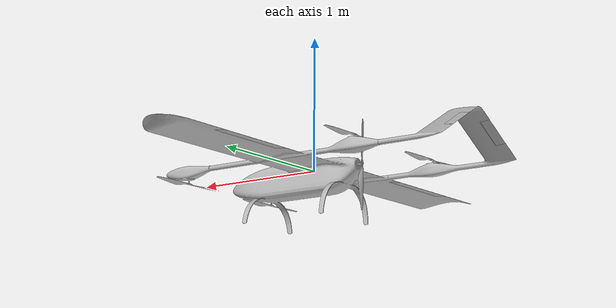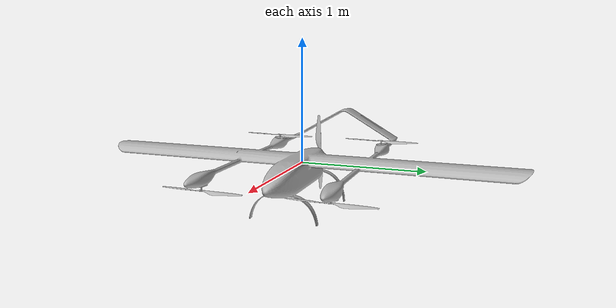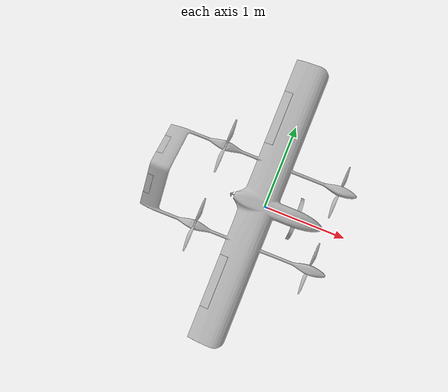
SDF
<?xml version="1.0"?>
<sdf version='1.6'>
  <model name='v1_vtol'>
    <link name='base_link'>
      <pose frame=''>0 0 0 0 -0 0</pose>
      <inertial>
        <pose frame=''>0 0 0 0 -0.073 0</pose>
        <mass>1.00568</mass>
        <inertia>
          <ixx>0.323867</ixx>
          <ixy>7.81346e-06</ixy>
          <ixz>0.012841</ixz>
          <iyy>0.240986</iyy>
          <iyz>-1.50384e-06</iyz>
          <izz>0.516377</izz>
        </inertia>
      </inertial>
      <collision name='base_link_collision'>
        <pose frame=''>0 0 0 0 -0 0</pose>
        <geometry>
          <mesh>
            <scale>1 1 1</scale>
            <uri>model://v1_vtol/new_meshes/base_link.stl</uri>
          </mesh>
        </geometry>
      </collision>
      <visual name='base_link_visual'>
        <pose frame=''>0 0 0 0 -0 0</pose>
        <geometry>
          <mesh>
            <scale>1 1 1</scale>
            <uri>model://v1_vtol/new_meshes/base_link.stl</uri>
          </mesh>
        </geometry>
      </visual>
    </link>
    <link name='v1_11/imu_link'>
      <inertial>
        <pose>0 0 0 0 0 0</pose>
        <mass>0.15</mass>
        <inertia>
          <ixx>0.00001</ixx>
          <ixy>0</ixy>
          <ixz>0</ixz>
          <iyy>0.00002</iyy>
          <iyz>0</iyz>
          <izz>0.00002</izz>
        </inertia>
      </inertial>
      <sensor name="imu_sensor" type="imu">
        <pose>0 0 0 3.141593 0 0</pose>
        <always_on>1</always_on>
        <update_rate>1000.0</update_rate>
      </sensor>
    </link>
    <joint name='v1_11/imu_joint' type='revolute'>
      <child>v1_11/imu_link</child>
      <parent>base_link</parent>
      <axis>
        <xyz>0 0 1</xyz>
        <limit>
          <lower>0</lower>
          <upper>0</upper>
          <effort>0</effort>
          <velocity>0</velocity>
        </limit>
        <dynamics>
          <damping>1.0</damping>
        </dynamics>
        <use_parent_model_frame>1</use_parent_model_frame>
      </axis>
      <physics>
        <ode>
          <implicit_spring_damper>1</implicit_spring_damper>
        </ode>
      </physics>
    </joint>
    <link name='left_aileron'>
      <pose frame=''>-0.184816 1.03035 0.028987 0 -0 0</pose>
      <inertial>
        <pose frame=''>-0.05 0 0 0 0 0</pose>
        <mass>0.020384</mass>
        <inertia>
          <ixx>0.000692</ixx>
          <ixy>0</ixy>
          <ixz>-0.000003</ixz>
          <iyy>0.000014</iyy>
          <iyz>0</iyz>
          <izz>0.000704</izz>
        </inertia>
      </inertial>
      <collision name='left_aileron_collision'>
        <pose frame=''>0 0 0 0 -0 0</pose>
        <geometry>
          <mesh>
            <scale>1 1 1</scale>
            <uri>model://v1_vtol/new_meshes/left_aileron.stl</uri>
          </mesh>
        </geometry>
      </collision>
      <visual name='left_aileron_visual'>
        <pose frame=''>0 0 0 0 -0 0</pose>
        <geometry>
          <mesh>
            <scale>1 1 1</scale>
            <uri>model://v1_vtol/new_meshes/left_aileron.stl</uri>
          </mesh>
        </geometry>
      </visual>
    </link>
    <joint name='left_aileron_joint' type='revolute'>
      <child>left_aileron</child>
      <parent>base_link</parent>
      <axis>
        <xyz>0 1 0</xyz>
        <limit>
          <lower>-0.53</lower>
          <upper>0.53</upper>
          <effort>-1</effort>
          <velocity>-1</velocity>
        </limit>
        <dynamics>
          <spring_reference>0</spring_reference>
          <spring_stiffness>0</spring_stiffness>
          <damping>0.004</damping>
        </dynamics>
        <use_parent_model_frame>1</use_parent_model_frame>
      </axis>
      <physics>
          <ode>
            <implicit_spring_damper>1</implicit_spring_damper>
          </ode>
      </physics>
    </joint>
    <link name='left_ruddervator'>
      <pose frame=''>-1.30595 0.239203 0.156078 -2.09515 0.007067 0.000243</pose>
      <inertial>
        <pose frame=''>-0.033 0 0 1.57 0 0</pose>
        <mass>0.0525</mass>
        <inertia>
          <ixx>0.0002673</ixx>
          <ixy>0</ixy>
          <ixz>0</ixz>
          <iyy>0.0000181</iyy>
          <iyz>0</iyz>
          <izz>0.0002845</izz>
        </inertia>
      </inertial>
      <collision name='left_ruddervator_collision'>
        <pose frame=''>0 0 0 0 -0 0</pose>
        <geometry>
          <mesh>
            <scale>1 1 1</scale>
            <uri>model://v1_vtol/new_meshes/left_ruddervator.stl</uri>
          </mesh>
        </geometry>
      </collision>
      <visual name='left_ruddervator_visual'>
        <pose frame=''>0 0 0 0 -0 0</pose>
        <geometry>
          <mesh>
            <scale>1 1 1</scale>
            <uri>model://v1_vtol/new_meshes/left_ruddervator.stl</uri>
          </mesh>
        </geometry>
      </visual>
    </link>
    <joint name='left_ruddervator_joint' type='revolute'>
      <child>left_ruddervator</child>
      <parent>base_link</parent>
      <axis>
        <xyz>0 1 -0.58</xyz>
        <limit>
          <lower>-0.53</lower>
          <upper>0.53</upper>
          <effort>-1</effort>
          <velocity>-1</velocity>
        </limit>
        <dynamics>
          <spring_reference>0</spring_reference>
          <spring_stiffness>0</spring_stiffness>
          <damping>0.004</damping>
        </dynamics>
        <use_parent_model_frame>1</use_parent_model_frame>
      </axis>
      <physics>
          <ode>
            <implicit_spring_damper>1</implicit_spring_damper>
          </ode>
      </physics>
    </joint>
    <link name='right_aileron'>
      <pose frame=''>-0.184816 -1.03035 0.028987 0 -0 0</pose>
      <inertial>
        <pose frame=''>-0.05 0 0 0 0 0</pose>
        <mass>0.020384</mass>
        <inertia>
          <ixx>0.000692</ixx>
          <ixy>0</ixy>
          <ixz>-0.000003</ixz>
          <iyy>0.000014</iyy>
          <iyz>0</iyz>
          <izz>0.000704</izz>
        </inertia>
      </inertial>
      <collision name='right_aileron_collision'>
        <pose frame=''>0 0 0 0 -0 0</pose>
        <geometry>
          <mesh>
            <scale>1 1 1</scale>
            <uri>model://v1_vtol/new_meshes/right_aileron.stl</uri>
          </mesh>
        </geometry>
      </collision>
      <visual name='right_aileron_visual'>
        <pose frame=''>0 0 0 0 -0 0</pose>
        <geometry>
          <mesh>
            <scale>1 1 1</scale>
            <uri>model://v1_vtol/new_meshes/right_aileron.stl</uri>
          </mesh>
        </geometry>
      </visual>
    </link>
    <joint name='right_aileron_joint' type='revolute'>
      <child>right_aileron</child>
      <parent>base_link</parent>
      <axis>
        <xyz>0 1 0</xyz>
        <limit>
          <lower>-0.53</lower>
          <upper>0.53</upper>
          <effort>1</effort>
          <velocity>1</velocity>
        </limit>
        <dynamics>
          <spring_reference>0</spring_reference>
          <spring_stiffness>0</spring_stiffness>
          <damping>0.004</damping>
        </dynamics>
        <use_parent_model_frame>1</use_parent_model_frame>
      </axis>
      <physics>
          <ode>
            <implicit_spring_damper>1</implicit_spring_damper>
          </ode>
        </physics>
    </joint>
    <link name='right_ruddervator'>
      <pose frame=''>-1.30595 -0.239203 0.156078 -1.04597 -0 0.000243</pose>
      <inertial>
        <pose frame=''>-0.033 0 0 1.57 0 0</pose>
        <mass>0.0525</mass>
        <inertia>
          <ixx>0.0002673</ixx>
          <ixy>0</ixy>
          <ixz>0</ixz>
          <iyy>0.0000181</iyy>
          <iyz>0</iyz>
          <izz>0.0002845</izz>
        </inertia>
      </inertial>
      <collision name='right_ruddervator_collision'>
        <pose frame=''>0 0 0 0 -0 0</pose>
        <geometry>
          <mesh>
            <scale>1 1 1</scale>
            <uri>model://v1_vtol/new_meshes/right_ruddervator.stl</uri>
          </mesh>
        </geometry>
      </collision>
      <visual name='right_ruddervator_visual'>
        <pose frame=''>0 0 0 0 -0 0</pose>
        <geometry>
          <mesh>
            <scale>1 1 1</scale>
            <uri>model://v1_vtol/new_meshes/right_ruddervator.stl</uri>
          </mesh>
        </geometry>
      </visual>
    </link>
    <joint name='right_ruddervator_joint' type='revolute'>
      <child>right_ruddervator</child>
      <parent>base_link</parent>
      <axis>
        <xyz>0 1 0.58</xyz>
        <limit>
          <lower>-0.53</lower>
          <upper>0.53</upper>
          <effort>-1</effort>
          <velocity>-1</velocity>
        </limit>
        <dynamics>
          <spring_reference>0</spring_reference>
          <spring_stiffness>0</spring_stiffness>
          <damping>0.004</damping>
        </dynamics>
        <use_parent_model_frame>1</use_parent_model_frame>
      </axis>
      <physics>
          <ode>
            <implicit_spring_damper>1</implicit_spring_damper>
          </ode>
      </physics>
    </joint>
    <link name='rotor_0'>
      <pose frame=''>0.767144 -0.488521 -0.083413 0 -0 0</pose>
      <inertial>
        <pose frame=''>0.007 -0 0.015147 0 -0 0</pose>
        <mass>0.067297</mass>
        <inertia>
          <ixx>0.0014438</ixx>
          <ixy>-4.626e-05</ixy>
          <ixz>-2.2886e-12</ixz>
          <iyy>1.0096e-05</iyy>
          <iyz>1.3106e-11</iyz>
          <izz>0.0014525</izz>
        </inertia>
      </inertial>
      <collision name='rotor_0_collision'>
        <pose frame=''>0 0 0 0 -0 0</pose>
        <geometry>
          <mesh>
            <scale>1 1 1</scale>
            <uri>model://v1_vtol/new_meshes/rotor_0.stl</uri>
          </mesh>
        </geometry>
      </collision>
      <visual name='rotor_0_visual'>
        <pose frame=''>0 0 0 0 -0 0</pose>
        <geometry>
          <mesh>
            <scale>1 1 1</scale>
            <uri>model://v1_vtol/new_meshes/rotor_0.stl</uri>
          </mesh>
        </geometry>
      </visual>
      <gravity>1</gravity>
      <velocity_decay/>
      <self_collide>0</self_collide>
    </link>
    <joint name='rotor_0_joint' type='revolute'>
      <child>rotor_0</child>
      <parent>base_link</parent>
      <axis>
        <xyz>0 0 1</xyz>
        <limit>
          <lower>-1e+16</lower>
          <upper>1e+16</upper>
        </limit>
        <dynamics>
          <spring_reference>0</spring_reference>
          <spring_stiffness>0</spring_stiffness>
          <friction>1.5</friction>
        </dynamics>
        <use_parent_model_frame>1</use_parent_model_frame>
      </axis>
    </joint>
    <link name='rotor_1'>
      <pose frame=''>-0.684445 0.489417 0.088645 0 -0 0</pose>
      <inertial>
        <pose frame=''>0.007 0 0.015147 0 -0 0</pose>
        <mass>0.067297</mass>
        <inertia>
          <ixx>0.0014429</ixx>
          <ixy>-5.8288e-05</ixy>
          <ixz>2.1818e-12</ixz>
          <iyy>1.0974e-05</iyy>
          <iyz>-1.307e-11</iyz>
          <izz>0.0014525</izz>
        </inertia>
      </inertial>
      <collision name='rotor_1_collision'>
        <pose frame=''>0 0 0 0 -0 0</pose>
        <geometry>
          <mesh>
            <scale>1 1 1</scale>
            <uri>model://v1_vtol/new_meshes/rotor_1.stl</uri>
          </mesh>
        </geometry>
      </collision>
      <visual name='rotor_1_visual'>
        <pose frame=''>0 0 0 0 -0 0</pose>
        <geometry>
          <mesh>
            <scale>1 1 1</scale>
            <uri>model://v1_vtol/new_meshes/rotor_1.stl</uri>
          </mesh>
        </geometry>
      </visual>
      <gravity>1</gravity>
      <velocity_decay/>
      <self_collide>0</self_collide>
    </link>
    <joint name='rotor_1_joint' type='revolute'>
      <child>rotor_1</child>
      <parent>base_link</parent>
      <axis>
        <xyz>0 0 1</xyz>
        <limit>
          <lower>-1e+16</lower>
          <upper>1e+16</upper>
        </limit>
        <dynamics>
          <spring_reference>0</spring_reference>
          <spring_stiffness>0</spring_stiffness>
          <friction>1.5</friction>
        </dynamics>
        <use_parent_model_frame>1</use_parent_model_frame>
      </axis>
    </joint>
    <link name='rotor_2'>
      <pose frame=''>0.767144 0.488521 -0.083413 0 -0 0</pose>
      <inertial>
        <pose frame=''>0.007 -0 0.015147 0 -0 0</pose>
        <mass>0.067299</mass>
        <inertia>
          <ixx>0.001442</ixx>
          <ixy>-6.9181e-05</ixy>
          <ixz>1.0898e-12</ixz>
          <iyy>1.1945e-05</iyy>
          <iyz>9.2792e-12</iyz>
          <izz>0.0014526</izz>
        </inertia>
      </inertial>
      <collision name='rotor_2_collision'>
        <pose frame=''>0 0 0 0 -0 0</pose>
        <geometry>
          <mesh>
            <scale>1 1 1</scale>
            <uri>model://v1_vtol/new_meshes/rotor_2.stl</uri>
          </mesh>
        </geometry>
      </collision>
      <visual name='rotor_2_visual'>
        <pose frame=''>0 0 0 0 -0 0</pose>
        <geometry>
          <mesh>
            <scale>1 1 1</scale>
            <uri>model://v1_vtol/new_meshes/rotor_2.stl</uri>
          </mesh>
        </geometry>
      </visual>
      <gravity>1</gravity>
      <velocity_decay/>
      <self_collide>0</self_collide>
    </link>
    <joint name='rotor_2_joint' type='revolute'>
      <child>rotor_2</child>
      <parent>base_link</parent>
      <axis>
        <xyz>0 0 1</xyz>
        <limit>
          <lower>-1e+16</lower>
          <upper>1e+16</upper>
        </limit>
        <dynamics>
          <spring_reference>0</spring_reference>
          <spring_stiffness>0</spring_stiffness>
          <friction>1.5</friction>
        </dynamics>
        <use_parent_model_frame>1</use_parent_model_frame>
      </axis>
    </joint>
    <link name='rotor_3'>
      <pose frame=''>-0.684445 -0.489417 0.088645 0 -0 0</pose>
      <inertial>
        <pose frame=''>0.007 -0 0.015147 0 -0 0</pose>
        <mass>0.067298</mass>
        <inertia>
          <ixx>0.0014386</ixx>
          <ixy>9.8364e-05</ixy>
          <ixz>3.0747e-13</ixz>
          <iyy>1.5372e-05</iyy>
          <iyz>-5.075e-13</iyz>
          <izz>0.0014526</izz>
        </inertia>
      </inertial>
      <collision name='rotor_3_collision'>
        <pose frame=''>0 0 0 0 -0 0</pose>
        <geometry>
          <mesh>
            <scale>1 1 1</scale>
            <uri>model://v1_vtol/new_meshes/rotor_3.stl</uri>
          </mesh>
        </geometry>
      </collision>
      <visual name='rotor_3_visual'>
        <pose frame=''>0 0 0 0 -0 0</pose>
        <geometry>
          <mesh>
            <scale>1 1 1</scale>
            <uri>model://v1_vtol/new_meshes/rotor_3.stl</uri>
          </mesh>
        </geometry>
      </visual>
      <gravity>1</gravity>
      <velocity_decay/>
      <self_collide>0</self_collide>
    </link>
    <joint name='rotor_3_joint' type='revolute'>
      <child>rotor_3</child>
      <parent>base_link</parent>
      <axis>
        <xyz>0 0 1</xyz>
        <limit>
          <lower>-1e+16</lower>
          <upper>1e+16</upper>
        </limit>
        <dynamics>
          <spring_reference>0</spring_reference>
          <spring_stiffness>0</spring_stiffness>
          <friction>1.5</friction>
        </dynamics>
        <use_parent_model_frame>1</use_parent_model_frame>
      </axis>
    </joint>
    <link name='rotor_pusher'>
      <pose frame=''>-0.417673 0.002029 0.003342 0 -0 0</pose>
      <inertial>
        <pose frame=''>-0.0128 -0 -0 0 -0 0</pose>
        <mass>0.18697</mass>
        <inertia>
          <ixx>0.0045337</ixx>
          <ixy>-3.9749e-11</ixy>
          <ixz>-3.7147e-11</ixz>
          <iyy>5.7998e-05</iyy>
          <iyz>-0.00031475</iyz>
          <izz>0.0044862</izz>
        </inertia>
      </inertial>
      <collision name='rotor_pusher_collision'>
        <pose frame=''>0 0 0 0 -0 0</pose>
        <geometry>
          <mesh>
            <scale>1 1 1</scale>
            <uri>model://v1_vtol/new_meshes/rotor_pusher.stl</uri>
          </mesh>
        </geometry>
      </collision>
      <visual name='rotor_pusher_visual'>
        <pose frame=''>0 0 0 0 -0 0</pose>
        <geometry>
          <mesh>
            <scale>1 1 1</scale>
            <uri>model://v1_vtol/new_meshes/rotor_pusher.stl</uri>
          </mesh>
        </geometry>
      </visual>
      <gravity>1</gravity>
      <velocity_decay/>
      <self_collide>0</self_collide>
    </link>
    <joint name='rotor_pusher_joint' type='revolute'>
      <child>rotor_pusher</child>
      <parent>base_link</parent>
      <axis>
        <xyz>1 0 0</xyz>
        <limit>
          <lower>-1e+16</lower>
          <upper>1e+16</upper>
        </limit>
        <dynamics>
          <spring_reference>0</spring_reference>
          <spring_stiffness>0</spring_stiffness>
          <friction>0.9</friction>
        </dynamics>
        <use_parent_model_frame>1</use_parent_model_frame>
      </axis>
    </joint>
    <plugin name="left_wing" filename="libLiftDragPlugin.so">
      <a0>0.156575426451136</a0>
      <cla>4.15662015617741</cla>
      <cda>0.401070456591576</cda>
      <cma>-1.2</cma>
      <alpha_stall>0.357288290430484</alpha_stall>
      <cla_stall>-3.85</cla_stall>
      <cda_stall>-0.9233984055</cda_stall>
      <cma_stall>0</cma_stall>
      <cp>-0.166 0.55 0</cp>
      <area>0.395</area>
      <air_density>1.2041</air_density>
      <forward>1 0 0</forward>
      <upward>0 0 1</upward>
      <link_name>base_link</link_name>
      <control_joint_name>
        left_aileron_joint
      </control_joint_name>
      <control_joint_rad_to_cl>-0.5</control_joint_rad_to_cl>
    </plugin>
    <plugin name="right_wing" filename="libLiftDragPlugin.so">
      <a0>0.156575426451136</a0>
      <cla>4.15662015617741</cla>
      <cda>0.401070456591576</cda>
      <cma>-1.2</cma>
      <alpha_stall>0.357288290430484</alpha_stall>
      <cla_stall>-3.85</cla_stall>
      <cda_stall>-0.9233984055</cda_stall>
      <cma_stall>0</cma_stall>
      <cp>-0.166 -0.55 0</cp>
      <area>0.395</area>
      <air_density>1.2041</air_density>
      <forward>1 0 0</forward>
      <upward>0 0 1</upward>
      <link_name>base_link</link_name>
      <control_joint_name>
        right_aileron_joint
      </control_joint_name>
      <control_joint_rad_to_cl>-0.5</control_joint_rad_to_cl>
    </plugin>
    <plugin name="left_tail" filename="libLiftDragPlugin.so">
      <a0>0</a0>
      <cla>3.10543124960906</cla>
      <cda>0.269290163711487</cda>
      <cma>-1.2</cma>
      <alpha_stall>0.349065850398866</alpha_stall>
      <cla_stall>-3.85</cla_stall>
      <cda_stall>-0.9233984055</cda_stall>
      <cma_stall>0</cma_stall>
      <cp>-1.25 0.1414 0.2021</cp>
      <area>0.075</area>
      <air_density>1.2041</air_density>
      <forward>1 0 0</forward>
      <upward>0 0.707 0.707</upward>
      <link_name>base_link</link_name>
      <control_joint_name>
        left_ruddervator_joint
      </control_joint_name>
      <control_joint_rad_to_cl>-4.0</control_joint_rad_to_cl>
    </plugin>
    <plugin name="right_tail" filename="libLiftDragPlugin.so">
      <a0>0</a0>
      <cla>3.10543124960906</cla>
      <cda>0.269290163711487</cda>
      <cma>-1.2</cma>
      <alpha_stall>0.349065850398866</alpha_stall>
      <cla_stall>-3.85</cla_stall>
      <cda_stall>-0.9233984055</cda_stall>
      <cma_stall>0</cma_stall>
      <cp>-1.25 -0.1414 0.2021</cp>
      <area>0.075</area>
      <air_density>1.2041</air_density>
      <forward>1 0 0</forward>
      <upward>0 -0.707 0.707</upward>
      <link_name>base_link</link_name>
      <control_joint_name>
        right_ruddervator_joint
      </control_joint_name>
      <control_joint_rad_to_cl>-4.0</control_joint_rad_to_cl>
    </plugin>
    <plugin name="pusher_blade_1" filename="libLiftDragPlugin.so">
      <a0>0.30</a0>
      <alpha_stall>1.4</alpha_stall>
      <cla>4.2500</cla>
      <cda>0.10</cda>
      <cma>0.00</cma>
      <cla_stall>-0.025</cla_stall>
      <cda_stall>0.0</cda_stall>
      <cma_stall>0.0</cma_stall>
      <area>0.02</area>
      <air_density>1.2041</air_density>
      <cp>0 0.093 0</cp>
      <forward> 0 1</forward>
      <upward>1 0 0</upward>
      <link_name>rotor_pusher</link_name>
    </plugin>
    <plugin name="pusher_blade_2" filename="libLiftDragPlugin.so">
      <a0>0.30</a0>
      <alpha_stall>1.4</alpha_stall>
      <cla>4.2500</cla>
      <cda>0.10</cda>
      <cma>0.00</cma>
      <cla_stall>-0.025</cla_stall>
      <cda_stall>0.0</cda_stall>
      <cma_stall>0.0</cma_stall>
      <area>0.02</area>
      <air_density>1.2041</air_density>
      <cp>0 -0.093 0</cp>
      <forward>0 0 -1</forward>
      <upward>1 0 0</upward>
      <link_name>rotor_pusher</link_name>
    </plugin>
    <plugin name="rotor_0_blade_1" filename="libLiftDragPlugin.so">
      <a0>0.3</a0>
      <alpha_stall>1.4</alpha_stall>
      <cla>1.2500</cla>
      <cda>0.10</cda>
      <cma>0.00</cma>
      <cda_stall>0.0</cda_stall>
      <cla_stall>-0.025</cla_stall>
      <cma_stall>0.0</cma_stall>
      <area>0.02</area>
      <air_density>1.2041</air_density>
      <cp>0  0.093 0</cp>
      <forward>-1 0 0</forward>
      <upward>0 0 1</upward>
      <link_name>rotor_0</link_name>
    </plugin>
    <plugin name="rotor_0_blade_2" filename="libLiftDragPlugin.so">
      <a0>0.3</a0>
      <alpha_stall>1.4</alpha_stall>
      <cla>1.2500</cla>
      <cda>0.10</cda>
      <cma>0.00</cma>
      <cla_stall>-0.025</cla_stall>
      <cda_stall>0.0</cda_stall>
      <cma_stall>0.0</cma_stall>
      <area>0.02</area>
      <air_density>1.2041</air_density>
       <cp>0 -0.093 0</cp>
      <forward>1 0 0</forward>
      <upward>0 0 1</upward>
      <link_name>rotor_0</link_name>
    </plugin>
 <plugin name="rotor_1_blade_1" filename="libLiftDragPlugin.so">
      <a0>0.3</a0>
      <alpha_stall>1.4</alpha_stall>
      <cla>1.2500</cla>
      <cda>0.10</cda>
      <cma>0.00</cma>
      <cla_stall>-0.025</cla_stall>
      <cda_stall>0.0</cda_stall>
      <cma_stall>0.0</cma_stall>
      <area>0.02</area>
      <air_density>1.2041</air_density>
       <cp>0 0.093 0</cp>
      <forward>-1 0 0</forward>
      <upward>0 0 1</upward>
      <link_name>rotor_1</link_name>
    </plugin>
    <plugin name="rotor_1_blade_2" filename="libLiftDragPlugin.so">
      <a0>0.3</a0>
      <alpha_stall>1.4</alpha_stall>
      <cla>1.2500</cla>
      <cda>0.10</cda>
      <cma>0.00</cma>
      <cla_stall>-0.025</cla_stall>
      <cda_stall>0.0</cda_stall>
      <cma_stall>0.0</cma_stall>
      <area>0.02</area>
      <air_density>1.2041</air_density>
      <cp>0  -0.093 0</cp>
      <forward>1 0 0</forward>
      <upward>0 0 1</upward>
      <link_name>rotor_1</link_name>
    </plugin>
<plugin name="rotor_2_blade_1" filename="libLiftDragPlugin.so">
      <a0>0.3</a0>
      <alpha_stall>1.4</alpha_stall>
      <cla>1.2500</cla>
      <cda>0.10</cda>
      <cma>0.00</cma>
      <cla_stall>-0.025</cla_stall>
      <cda_stall>0.0</cda_stall>
      <cma_stall>0.0</cma_stall>
      <area>0.02</area>
      <air_density>1.2041</air_density>
      <cp>0  0.093 0</cp>
      <forward>1 0 0</forward>
      <upward>0 0 1</upward>
      <link_name>rotor_2</link_name>
    </plugin>
    <plugin name="rotor_2_blade_2" filename="libLiftDragPlugin.so">
      <a0>0.3</a0>
      <alpha_stall>1.4</alpha_stall>
      <cla>1.2500</cla>
      <cda>0.10</cda>
      <cma>0.00</cma>
      <cla_stall>-0.025</cla_stall>
      <cda_stall>0.0</cda_stall>
      <cma_stall>0.0</cma_stall>
      <area>0.02</area>
      <air_density>1.2041</air_density>
       <cp>0 -0.093 0</cp>
      <forward>-1 0 0</forward>
      <upward>0 0 1</upward>
      <link_name>rotor_2</link_name>
    </plugin>
<plugin name="rotor_3_blade_1" filename="libLiftDragPlugin.so">
      <a0>0.3</a0>
      <alpha_stall>1.4</alpha_stall>
      <cla>1.2500</cla>
      <cda>0.10</cda>
      <cma>0.00</cma>
      <cla_stall>-0.025</cla_stall>
      <cda_stall>0.0</cda_stall>
      <cma_stall>0.0</cma_stall>
      <area>0.02</area>
      <air_density>1.2041</air_density>
      <cp>0  0.093 0</cp>
      <forward>1 0 0</forward>
      <upward>0 0 1</upward>
      <link_name>rotor_3</link_name>
    </plugin>
    <plugin name="rotor_3_blade_2" filename="libLiftDragPlugin.so">
      <a0>0.3</a0>
      <alpha_stall>1.4</alpha_stall>
      <cla>1.2500</cla>
      <cda>0.10</cda>
      <cma>0.00</cma>
      <cla_stall>-0.025</cla_stall>
      <cda_stall>0.0</cda_stall>
      <cma_stall>0.0</cma_stall>
      <area>0.02</area>
      <air_density>1.2041</air_density>
       <cp>0 -0.093 0</cp>
      <forward>-1 0 0</forward>
      <upward>0 0 1</upward>
      <link_name>rotor_3</link_name>
    </plugin>
 <plugin name="arducopter_plugin" filename="libArduPilotPlugin.so">
      <fdm_addr>127.0.0.1</fdm_addr>
      <fdm_port_in>9002</fdm_port_in>
      <fdm_port_out>9003</fdm_port_out>
      <modelXYZToAirplaneXForwardZDown>0 0 0 3.141593 0 0</modelXYZToAirplaneXForwardZDown>
      <gazeboXYZToNED>0 0 0 3.141593 0 0</gazeboXYZToNED>
      <imuName>v1_11/imu_link::imu_sensor</imuName>
      <connectionTimeoutMaxCount>5</connectionTimeoutMaxCount>

      <control channel="0">
          <multiplier>-1</multiplier>
          <offset>-0.5</offset>
          <type>POSITION</type>
          <p_gain>2.5</p_gain>
          <i_gain>0</i_gain>
          <d_gain>0</d_gain>
          <i_max>0</i_max>
          <i_min>0</i_min>
          <cmd_max>1</cmd_max>
          <cmd_min>-1</cmd_min>
        <jointName>left_aileron_joint</jointName>
      </control>
      <control channel="8">
          <multiplier>1</multiplier>
          <offset>-0.5</offset>
          <type>POSITION</type>
          <p_gain>2.5</p_gain>
          <i_gain>0</i_gain>
          <d_gain>0</d_gain>
          <i_max>0</i_max>
          <i_min>0</i_min>
          <cmd_max>1</cmd_max>
          <cmd_min>-1</cmd_min>
        <jointName>right_aileron_joint</jointName>
      </control>
      <control channel="1">
          <multiplier>1</multiplier>
          <offset>-0.5</offset>
          <type>POSITION</type>
          <p_gain>2.5</p_gain>
          <i_gain>0</i_gain>
          <d_gain>0</d_gain>
          <i_max>0</i_max>
          <i_min>0</i_min>
          <cmd_max>1</cmd_max>
          <cmd_min>-1</cmd_min>
        <jointName>left_ruddervator_joint</jointName>
      </control>
      <control channel="2">
          <multiplier>1</multiplier>
          <offset>-0.5</offset>
          <type>POSITION</type>
          <p_gain>2.5</p_gain>
          <i_gain>0</i_gain>
          <d_gain>0</d_gain>
          <i_max>0</i_max>
          <i_min>0</i_min>
          <cmd_max>1</cmd_max>
          <cmd_min>-1</cmd_min>
        <jointName>right_ruddervator_joint</jointName>
      </control>

      <control channel="3">
        <multiplier>2000</multiplier>
        <offset>0</offset>
        <type>VELOCITY</type>
        <p_gain>10</p_gain>
        <i_gain>0</i_gain>
        <d_gain>0</d_gain>
        <i_max>0</i_max>
        <i_min>0</i_min>
        <cmd_max>20.0</cmd_max>
        <cmd_min>0.0</cmd_min>
        <jointName>rotor_pusher_joint</jointName>
        <rotorVelocitySlowdownSim>1</rotorVelocitySlowdownSim>
      </control>
      <control channel="4">
        <type>VELOCITY</type>
        <offset>0</offset>
        <p_gain>0.20</p_gain>
        <i_gain>0</i_gain>
        <d_gain>0</d_gain>
        <i_max>0</i_max>
        <i_min>0</i_min>
        <cmd_max>2.5</cmd_max>
        <cmd_min>-2.5</cmd_min>
        <jointName>rotor_0_joint</jointName>
        <multiplier>400</multiplier>
        <controlVelocitySlowdownSim>1</controlVelocitySlowdownSim>
      </control>
      <control channel="5">
        <type>VELOCITY</type>
        <offset>0</offset>
        <p_gain>0.20</p_gain>
        <i_gain>0</i_gain>
        <d_gain>0</d_gain>
        <i_max>0</i_max>
        <i_min>0</i_min>
        <cmd_max>2.5</cmd_max>
        <cmd_min>-2.5</cmd_min>
        <jointName>rotor_1_joint</jointName>
        <multiplier>400</multiplier>
        <controlVelocitySlowdownSim>1</controlVelocitySlowdownSim>
      </control>
      <control channel="6">
        <type>VELOCITY</type>
        <offset>0</offset>
        <p_gain>0.20</p_gain>
        <i_gain>0</i_gain>
        <d_gain>0</d_gain>
        <i_max>0</i_max>
        <i_min>0</i_min>
        <cmd_max>2.5</cmd_max>
        <cmd_min>-2.5</cmd_min>
        <jointName>rotor_2_joint</jointName>
        <multiplier>-400</multiplier>
        <controlVelocitySlowdownSim>1</controlVelocitySlowdownSim>
      </control>
      <control channel="7">
        <type>VELOCITY</type>
        <offset>0</offset>
        <p_gain>0.20</p_gain>
        <i_gain>0</i_gain>
        <d_gain>0</d_gain>
        <i_max>0</i_max>
        <i_min>0</i_min>
        <cmd_max>2.5</cmd_max>
        <cmd_min>-2.5</cmd_min>
        <jointName>rotor_3_joint</jointName>
        <multiplier>-400</multiplier>
        <controlVelocitySlowdownSim>1</controlVelocitySlowdownSim>
      </control>
    </plugin>

  </model>
</sdf>
